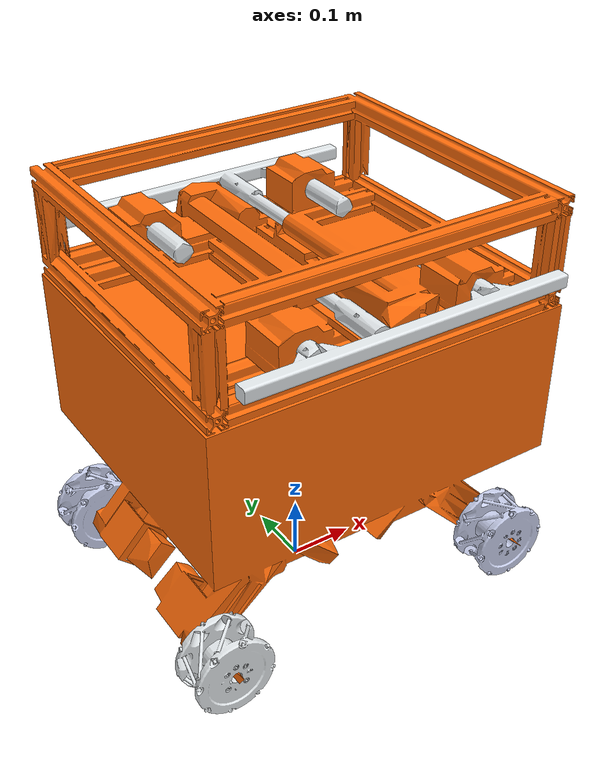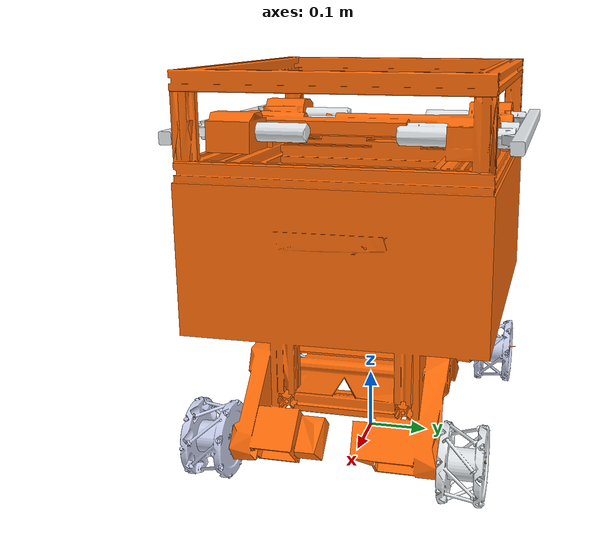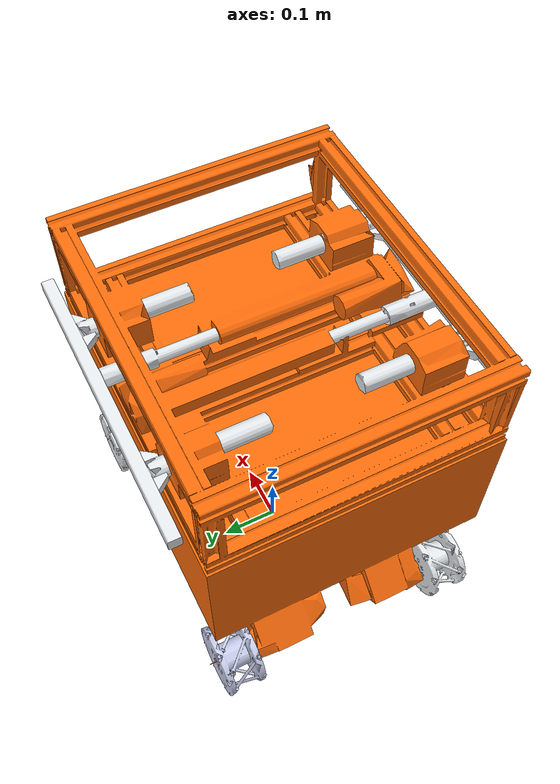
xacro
<?xml version="1.0" encoding="utf-8"?>
<robot xmlns:xacro="http://www.ros.org/wiki/xacro" name="recon_bot">

  <xacro:include filename="$(find recon_bot_description)/robot/materials.xacro"/>

  <link name="base_footprint">
    <origin xyz="0.0 0.0 0.0" rpy="0.0 0.0 3.14" />
  </link>
    <joint name="base_footprint_to_Mobile_Base" type="fixed">
    <parent link="base_footprint"/>
    <child link="Mobile_Base"/>
    <origin rpy="0 0 0" xyz="0 0 0.48"/>
  </joint>
  <link
    name="Mobile_Base">
    <inertial>
      <origin
        xyz="0.00270794889201253 0.000926242394781646 -0.128115066829716"
        rpy="0 0 0" />
      <mass
        value="13.0496430135498" />
      <inertia
        ixx="0.078428885336732"
        ixy="-0.000424260125405416"
        ixz="-4.99662127671641E-08"
        iyy="0.101100659734584"
        iyz="-1.90955777107521E-07"
        izz="0.156190952643998" />
    </inertial>
    <visual>
      <origin
        xyz="0 0 0"
        rpy="0 0 0" />
      <geometry>
        <mesh
          filename="package://recon_bot_description/meshes2/Mobile_Base_visual.stl" />
      </geometry>
      <material
        name="orange">
      </material>
    </visual>
    <collision>
      <origin
        xyz="0 0 0"
        rpy="0 0 0" />
      <geometry>
        <mesh
          filename="package://recon_bot_description/meshes/Mobile_Base.STL" />
      </geometry>
    </collision>
  </link>

    <!-- Joint and Link for the Merged Laser Scan Frame -->
  <link name="merged_scan_frame">
  </link>

  <joint name="merged_scan_joint" type="fixed">
    <parent link="Mobile_Base"/>
    <child link="merged_scan_frame"/>
    <origin xyz="0 0 -0.2" rpy="0 0 0"/>
  </joint>

  <link
    name="Wheel_LF">
    <inertial>
      <origin
        xyz="-3.68604325448052E-05 8.74696815872378E-06 -0.000155511793327234"
        rpy="0 0 0" />
      <mass
        value="0.77404110274982" />
      <inertia
        ixx="0.00055506881532458"
        ixy="2.15732280355355E-07"
        ixz="-1.8565434672159E-10"
        iyy="0.000555930826369469"
        iyz="2.2728326005673E-10"
        izz="0.00098890621085001" />
    </inertial>
    <visual>
      <origin
        xyz="0 0 0"
        rpy="0 0 0" />
      <geometry>
        <mesh
          filename="package://recon_bot_description/meshes2/Wheel_LF_visual.stl" />
      </geometry>
      <material
        name="">
        <color
          rgba="0.898039215686275 0.917647058823529 0.929411764705882 1" />
      </material>
    </visual>
    <collision>
      <origin
        xyz="0 0 0"
        rpy="0 0 0" />
      <geometry>
        <mesh
          filename="package://recon_bot_description/meshes/Wheel_LF.STL" />
      </geometry>
    </collision>
  </link>
  <joint
    name="J_Wheel_LF"
    type="continuous">
    <origin
      xyz="0.243373703143014 0.196999999999994 -0.410500520826094"
      rpy="1.5707963267949 -0.698892577239709 0" />
    <parent
      link="Mobile_Base" />
    <child
      link="Wheel_LF" />
    <axis
      xyz="0 0 -1" />
  </joint>

  <link
    name="Wheel_LR">
    <inertial>
      <origin
        xyz="2.28750886412388E-05 4.38499760812283E-05 -0.000160556590807603"
        rpy="0 0 0" />
      <mass
        value="0.286935584537691" />
      <inertia
        ixx="0.000205567523367468"
        ixy="4.86825936008885E-10"
        ixz="5.22777710432301E-10"
        iyy="0.000205922237695722"
        iyz="8.40224944649351E-11"
        izz="0.000366267561115225" />
    </inertial>
    <visual>
      <origin
        xyz="0 0 0"
        rpy="0 0 0" />
      <geometry>
        <mesh
          filename="package://recon_bot_description/meshes2/Wheel_LR_visual.stl" />
      </geometry>
      <material
        name="">
        <color
          rgba="0.792156862745098 0.819607843137255 0.933333333333333 1" />
      </material>
    </visual>
    <collision>
      <origin
        xyz="0 0 0"
        rpy="0 0 0" />
      <geometry>
        <mesh
          filename="package://recon_bot_description/meshes/Wheel_LR.STL" />
      </geometry>
    </collision>
  </link>
  <joint
    name="J_Wheel_LR"
    type="continuous">
    <origin
      xyz="-0.243373703143012 0.197 -0.410500520826101"
      rpy="1.5707963267949 -0.479686767241463 0" />
    <parent
      link="Mobile_Base" />
    <child
      link="Wheel_LR" />
    <axis
      xyz="0 0 -1" />
  </joint>

  <link
    name="Wheel_RF">
    <inertial>
      <origin
        xyz="2.28374030626366E-05 4.3913212168234E-05 -0.000160482316143507"
        rpy="0 0 0" />
      <mass
        value="0.286934748749192" />
      <inertia
        ixx="0.00020556617413596"
        ixy="1.10285044985226E-14"
        ixz="5.73034041739461E-10"
        iyy="0.000205921402223248"
        iyz="1.10288592805437E-14"
        izz="0.000366265336032199" />
    </inertial>
    <visual>
      <origin
        xyz="0 0 0"
        rpy="0 0 0" />
      <geometry>
        <mesh
          filename="package://recon_bot_description/meshes2/Wheel_RF_visual.stl" />
      </geometry>
      <material
        name="">
        <color
          rgba="0.792156862745098 0.819607843137255 0.933333333333333 1" />
      </material>
    </visual>
    <collision>
      <origin
        xyz="0 0 0"
        rpy="0 0 0" />
      <geometry>
        <mesh
          filename="package://recon_bot_description/meshes/Wheel_RF.STL" />
      </geometry>
    </collision>
  </link>
  <joint
    name="J_Wheel_RF"
    type="continuous">
    <origin
      xyz="0.243373703143008 -0.197 -0.410500520826103"
      rpy="-1.57079632679488 0.943014448657122 0" />
    <parent
      link="Mobile_Base" />
    <child
      link="Wheel_RF" />
    <axis
      xyz="0 0 -1" />
  </joint>

  <link
    name="Wheel_RR">
    <inertial>
      <origin
        xyz="-3.6897172044803E-05 8.73176160257061E-06 -0.000155533212772396"
        rpy="0 0 0" />
      <mass
        value="0.774041107399352" />
      <inertia
        ixx="0.000555071231306981"
        ixy="2.13316469015239E-07"
        ixz="2.79563667310414E-11"
        iyy="0.000555928410599816"
        iyz="-2.88355488444584E-10"
        izz="0.000988906210952547" />
    </inertial>
    <visual>
      <origin
        xyz="0 0 0"
        rpy="0 0 0" />
      <geometry>
        <mesh
          filename="package://recon_bot_description/meshes2/Wheel_RR_visual.stl" />
      </geometry>
      <material
        name="">
        <color
          rgba="0.898039215686275 0.917647058823529 0.929411764705882 1" />
      </material>
    </visual>
    <collision>
      <origin
        xyz="0 0 0"
        rpy="0 0 0" />
      <geometry>
        <mesh
          filename="package://recon_bot_description/meshes/Wheel_RR.STL" />
      </geometry>
    </collision>
  </link>
  <joint
    name="J_Wheel_RR"
    type="continuous">
    <origin
      xyz="-0.243373703143013 -0.197 -0.410500520826098"
      rpy="1.5707963267949 0.0225283753887193 -3.14159265358962" />
    <parent
      link="Mobile_Base" />
    <child
      link="Wheel_RR" />
    <axis
      xyz="0 0 -1" />
  </joint>

  <link
    name="Pin_Head_L">
    <inertial>
      <origin
        xyz="2.1559243279512E-10 -0.0321906491972987 -0.0458464269660464"
        rpy="0 0 0" />
      <mass
        value="1.48466823730085" />
      <inertia
        ixx="0.0119893258639138"
        ixy="-6.29977450022121E-13"
        ixz="-2.11071844261683E-11"
        iyy="0.00224564184360829"
        iyz="-6.50425726210649E-11"
        izz="0.00987450416832168" />
    </inertial>
    <visual>
      <origin
        xyz="0 0 0"
        rpy="0 0 0" />
      <geometry>
        <mesh
          filename="package://recon_bot_description/meshes2/Pin_Head_L_visual.stl" />
      </geometry>
      <material
        name="">
        <color
          rgba="0.898039215686275 0.917647058823529 0.929411764705882 1" />
      </material>
    </visual>
    <collision>
      <origin
        xyz="0 0 0"
        rpy="0 0 0" />
      <geometry>
        <mesh
          filename="package://recon_bot_description/meshes/Pin_Head_L.STL" />
      </geometry>
    </collision>
  </link>
  <joint
    name="J_Pin_Head_L"
    type="fixed">
    <origin
      xyz="0.04 0.2352 0.06"
      rpy="4.71365 -1.5708 0" />
    <parent
      link="Mobile_Base" />
    <child
      link="Pin_Head_L" />
    <axis
      xyz="0 0 1" />
    <limit
      lower="0"
      upper="0.07"
      effort="0"
      velocity="0" />
  </joint>
  <link
    name="Pin_Head_R">
    <inertial>
      <origin
        xyz="-2.1559198870591E-10 0.0321906491972989 -0.0458464269660465"
        rpy="0 0 0" />
      <mass
        value="1.48466823730085" />
      <inertia
        ixx="0.0119893258639138"
        ixy="-6.29978075149543E-13"
        ixz="2.1107197896332E-11"
        iyy="0.00224564184360829"
        iyz="6.50425742700792E-11"
        izz="0.00987450416832168" />
    </inertial>
    <visual>
      <origin
        xyz="0 0 0"
        rpy="0 0 0" />
      <geometry>
        <mesh
          filename="package://recon_bot_description/meshes2/Pin_Head_R_visual.stl" />
      </geometry>
      <material
        name="">
        <color
          rgba="0.898039215686275 0.917647058823529 0.929411764705882 1" />
      </material>
    </visual>
    <collision>
      <origin
        xyz="0 0 0"
        rpy="0 0 0" />
      <geometry>
        <mesh
          filename="package://recon_bot_description/meshes/Pin_Head_R.STL" />
      </geometry>
    </collision>
  </link>
  <joint
    name="J_Pin_Head_R"
    type="fixed">
    <origin
      xyz="-0.04 -0.2335 0.06"
      rpy="1.5708 1.5708 0" />
    <parent
      link="Mobile_Base" />
    <child
      link="Pin_Head_R" />
    <axis
      xyz="0 0 1" />
    <limit
      lower="0"
      upper="0.07"
      effort="0"
      velocity="0" />
  </joint>

  <!-- World frame (root for TF tree) -->

</robot>

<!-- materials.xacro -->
<robot xmlns:xacro="http://www.ros.org/wiki/xacro" >

  <material name="black">
    <color rgba="0.0 0.0 0.0 1.0"/>
  </material>

  <material name="blue">
    <color rgba="0.0 0.0 0.8 1.0"/>
  </material>

  <material name="green">
    <color rgba="0.0 0.8 0.0 1.0"/>
  </material>

  <material name="grey">
    <color rgba="0.2 0.2 0.2 1.0"/>
  </material>

  <material name="orange">
    <color rgba="${255/255} ${108/255} ${10/255} 1.0"/>
  </material>

  <material name="brown">
    <color rgba="${222/255} ${207/255} ${195/255} 1.0"/>
  </material>

  <material name="red">
    <color rgba="0.8 0.0 0.0 1.0"/>
  </material>

  <material name="white">
    <color rgba="1.0 1.0 1.0 1.0"/>
  </material>

</robot>
